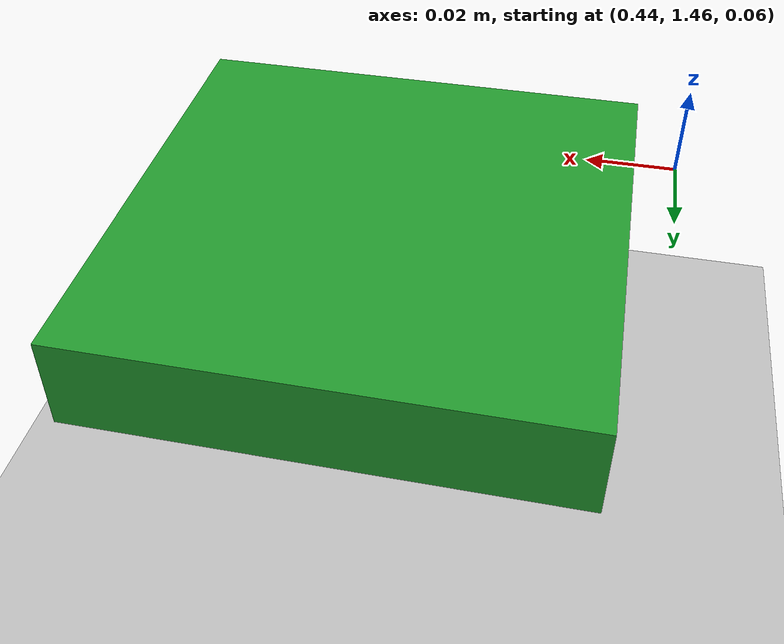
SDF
<?xml version="1.0" ?>
<sdf version="1.5">
  <world name="iris_irlock">

<plugin name="gz::sim::systems::Physics" filename="gz-sim-physics-system"/>
    <plugin name="gz::sim::systems::UserCommands" filename="gz-sim-user-commands-system"/>
    <plugin name="gz::sim::systems::SceneBroadcaster" filename="gz-sim-scene-broadcaster-system"/>
    <plugin name="gz::sim::systems::Contact" filename="gz-sim-contact-system"/>
    <plugin name="gz::sim::systems::Imu" filename="gz-sim-imu-system"/>
    <plugin name="gz::sim::systems::AirPressure" filename="gz-sim-air-pressure-system"/>
    <plugin name="gz::sim::systems::ApplyLinkWrench" filename="gz-sim-apply-link-wrench-system"/>
    <plugin name="gz::sim::systems::NavSat" filename="gz-sim-navsat-system"/>
    <plugin name="gz::sim::systems::Sensors" filename="gz-sim-sensors-system">
      <render_engine>ogre2</render_engine>
    </plugin>
    <gui fullscreen="false">
      <!-- 3D scene -->
      <plugin filename="MinimalScene" name="3D View">
        <gz-gui>
          <title>3D View</title>
          <property type="bool" key="showTitleBar">false</property>
          <property type="string" key="state">docked</property>
        </gz-gui>
        <engine>ogre2</engine>
        <scene>scene</scene>
        <ambient_light>0.4 0.4 0.4</ambient_light>
        <background_color>0.8 0.8 0.8</background_color>
        <camera_pose>-6 0 6 0 0.5 0</camera_pose>
        <camera_clip>
          <near>0.25</near>
          <far>25000</far>
        </camera_clip>
      </plugin>
      <!-- Plugins that add functionality to the scene -->
      <plugin filename="EntityContextMenuPlugin" name="Entity context menu">
        <gz-gui>
          <property key="state" type="string">floating</property>
          <property key="width" type="double">5</property>
          <property key="height" type="double">5</property>
          <property key="showTitleBar" type="bool">false</property>
        </gz-gui>
      </plugin>
      <plugin filename="GzSceneManager" name="Scene Manager">
        <gz-gui>
          <property key="resizable" type="bool">false</property>
          <property key="width" type="double">5</property>
          <property key="height" type="double">5</property>
          <property key="state" type="string">floating</property>
          <property key="showTitleBar" type="bool">false</property>
        </gz-gui>
      </plugin>
      <plugin filename="InteractiveViewControl" name="Interactive view control">
        <gz-gui>
          <property key="resizable" type="bool">false</property>
          <property key="width" type="double">5</property>
          <property key="height" type="double">5</property>
          <property key="state" type="string">floating</property>
          <property key="showTitleBar" type="bool">false</property>
        </gz-gui>
      </plugin>
      <plugin filename="CameraTracking" name="Camera Tracking">
        <gz-gui>
          <property key="resizable" type="bool">false</property>
          <property key="width" type="double">5</property>
          <property key="height" type="double">5</property>
          <property key="state" type="string">floating</property>
          <property key="showTitleBar" type="bool">false</property>
        </gz-gui>
      </plugin>
      <plugin filename="MarkerManager" name="Marker manager">
        <gz-gui>
          <property key="resizable" type="bool">false</property>
          <property key="width" type="double">5</property>
          <property key="height" type="double">5</property>
          <property key="state" type="string">floating</property>
          <property key="showTitleBar" type="bool">false</property>
        </gz-gui>
      </plugin>
      <plugin filename="SelectEntities" name="Select Entities">
        <gz-gui>
          <anchors target="Select entities">
            <line own="right" target="right"/>
            <line own="top" target="top"/>
          </anchors>
          <property key="resizable" type="bool">false</property>
          <property key="width" type="double">5</property>
          <property key="height" type="double">5</property>
          <property key="state" type="string">floating</property>
          <property key="showTitleBar" type="bool">false</property>
        </gz-gui>
      </plugin>
      <plugin filename="VisualizationCapabilities" name="Visualization Capabilities">
        <gz-gui>
          <property key="resizable" type="bool">false</property>
          <property key="width" type="double">5</property>
          <property key="height" type="double">5</property>
          <property key="state" type="string">floating</property>
          <property key="showTitleBar" type="bool">false</property>
        </gz-gui>
      </plugin>
      <plugin filename="Spawn" name="Spawn Entities">
        <gz-gui>
          <anchors target="Select entities">
            <line own="right" target="right"/>
            <line own="top" target="top"/>
          </anchors>
          <property key="resizable" type="bool">false</property>
          <property key="width" type="double">5</property>
          <property key="height" type="double">5</property>
          <property key="state" type="string">floating</property>
          <property key="showTitleBar" type="bool">false</property>
        </gz-gui>
      </plugin>
      <plugin name="World control" filename="WorldControl">
        <gz-gui>
          <title>World control</title>
          <property type="bool" key="showTitleBar">0</property>
          <property type="bool" key="resizable">0</property>
          <property type="double" key="height">72</property>
          <property type="double" key="width">121</property>
          <property type="double" key="z">1</property>
          <property type="string" key="state">floating</property>
          <anchors target="3D View">
            <line own="left" target="left"/>
            <line own="bottom" target="bottom"/>
          </anchors>
        </gz-gui>
        <play_pause>1</play_pause>
        <step>1</step>
        <start_paused>1</start_paused>
      </plugin>
      <plugin name="World stats" filename="WorldStats">
        <gz-gui>
          <title>World stats</title>
          <property type="bool" key="showTitleBar">0</property>
          <property type="bool" key="resizable">0</property>
          <property type="double" key="height">110</property>
          <property type="double" key="width">290</property>
          <property type="double" key="z">1</property>
          <property type="string" key="state">floating</property>
          <anchors target="3D View">
            <line own="right" target="right"/>
            <line own="bottom" target="bottom"/>
          </anchors>
        </gz-gui>
        <sim_time>1</sim_time>
        <real_time>1</real_time>
        <real_time_factor>1</real_time_factor>
        <iterations>1</iterations>
      </plugin>
      <plugin name="Entity tree" filename="EntityTree"/>
    </gui>

    <!-- A global light source -->
    <include>
      <uri>model://sun</uri>
    </include>
    <!-- A ground plane -->
    <include>
      <uri>model://ground_plane</uri>
    </include>
    <include>
      <uri>model://asphalt_plane</uri>
    </include>
    <physics name='default_physics' default='0' type='ode'>
      <gravity>0 0 -9.8066</gravity>
      <ode>
        <solver>
          <type>quick</type>
          <iters>10</iters>
          <sor>1.3</sor>
          <use_dynamic_moi_rescaling>0</use_dynamic_moi_rescaling>
        </solver>
        <constraints>
          <cfm>0</cfm>
          <erp>0.2</erp>
          <contact_max_correcting_vel>100</contact_max_correcting_vel>
          <contact_surface_layer>0.001</contact_surface_layer>
        </constraints>
      </ode>
      <max_step_size>0.004</max_step_size>
      <real_time_factor>1</real_time_factor>
      <real_time_update_rate>250</real_time_update_rate>
      <magnetic_field>6.0e-6 2.3e-5 -4.2e-5</magnetic_field>
    </physics>

    <model name="irlock_beacon">
      <pose>0.5 1.5 0.06 0 0 0</pose>
      <link name="link">
         <inertial>
          <pose>0 0 0 0 0 0</pose>
          <mass>10.0</mass>
          <inertia>
            <ixx>0.01</ixx>
            <ixy>0</ixy>
            <ixz>0</ixz>
            <iyy>0.01</iyy>
            <iyz>0</iyz>
            <izz>0.01</izz>
          </inertia>
        </inertial>
        <collision name="collision">
          <geometry>
            <box>
              <size>0.1 0.1 0.01</size>
            </box>
          </geometry>
          <surface>
            <friction>
              <ode>
                <mu>1.0</mu>
                <mu2>1.0</mu2>
                <fdir1>1 0 0</fdir1>
              </ode>
            </friction>
            <contact>
              <ode>
                <kp>1e+12</kp>
                <kd>1</kd>
                <max_vel>10</max_vel>
                <min_depth>0.003</min_depth>
              </ode>
            </contact>
          </surface>
        </collision>
        <visual name="visual">
          <geometry>
            <box>
              <size>0.1 0.1 0.02</size>
            </box>
          </geometry>
          <material>
            <script>
              <name>Gazebo/Green</name>
            </script>
          </material>
        </visual>
      </link>
    </model>

  </world>
</sdf>
